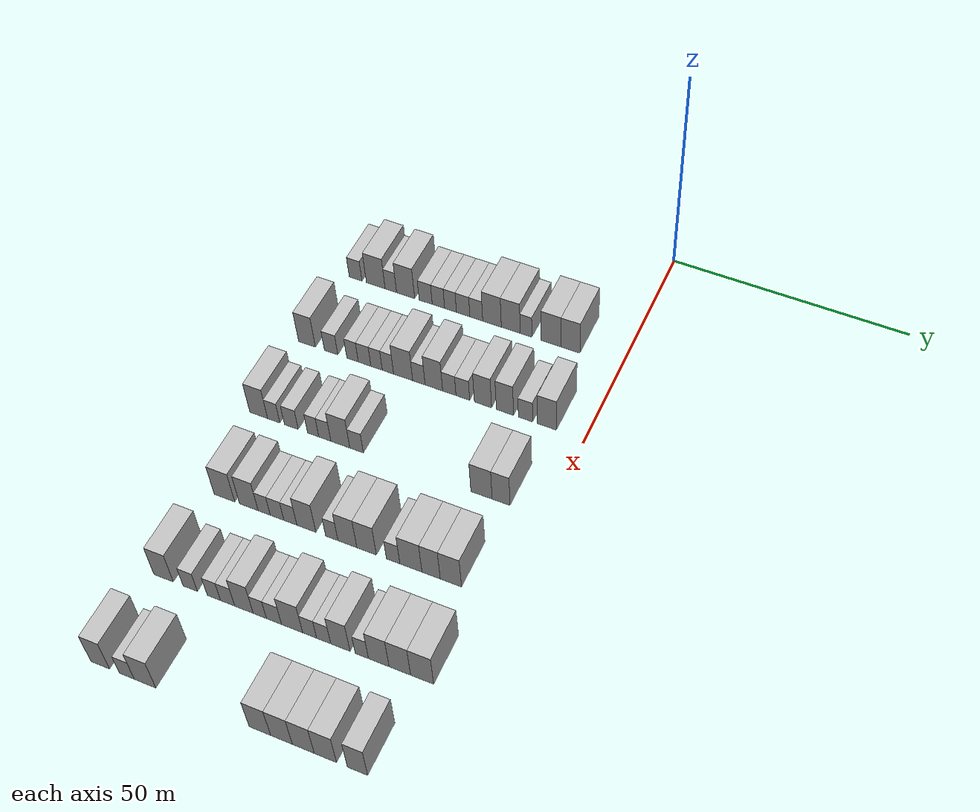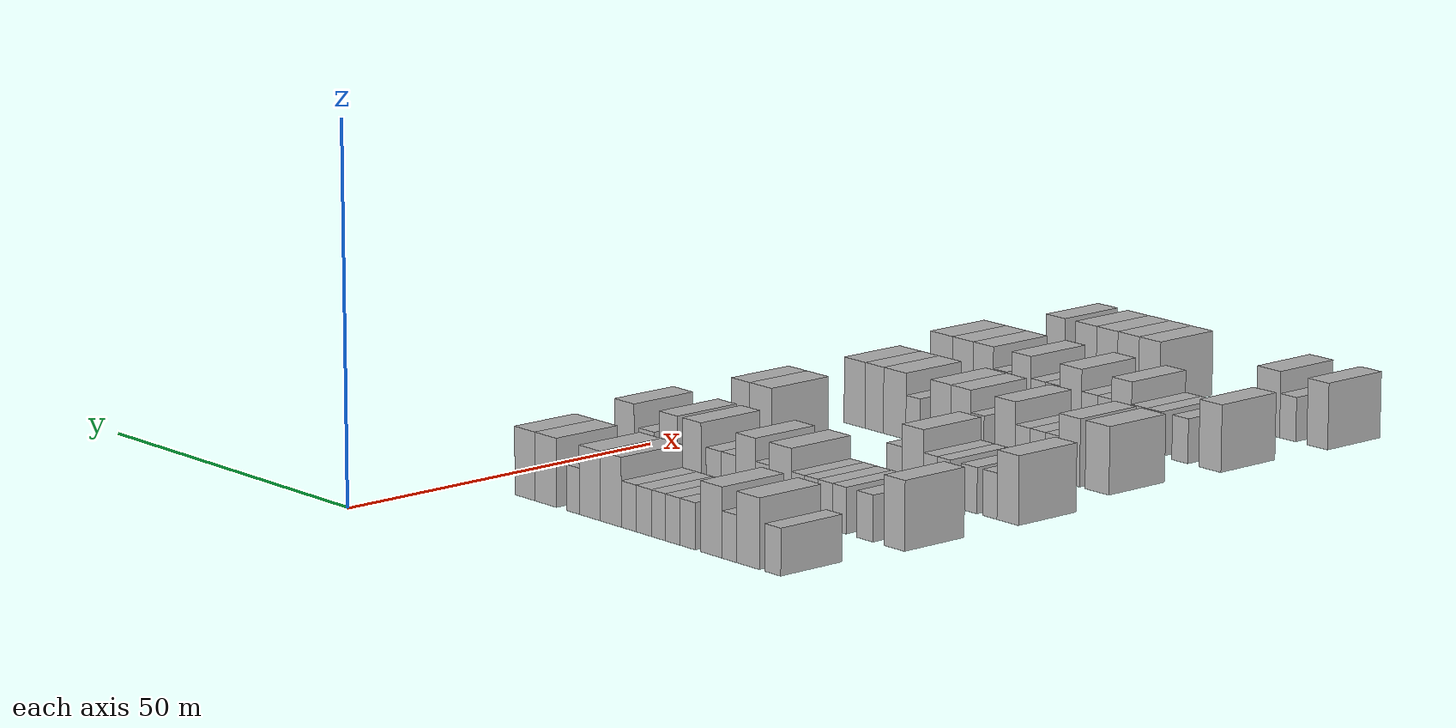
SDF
<sdf version="1.6">
 <world name="default">
  <model name="building_77">
   <static>1</static>
   <pose>25.0000 -58.4476 0 0.000000 0.000000 0.000000</pose>
   <link name="link">
    <pose>0 0 3.00 0 0 0</pose>
    <collision name="collision"><geometry><box><size>10.0000 2.9207 6.0000</size></box></geometry></collision>
    <visual name="visual">
     <cast_shadows>0</cast_shadows>
     <geometry><box><size>10.0000 2.9207 6.0000</size></box></geometry>
     <material>
      <script>
       <uri>model://HANNAS_wall/materials/scripts</uri>
       <uri>model://HANNAS_wall/materials/textures</uri>
       <name>vrc/HANNAS_wall</name>
      </script>
     </material>
    </visual>
   </link>
  </model>
  <model name="building_78">
   <static>1</static>
   <pose>25.0000 -53.8514 0 0.000000 0.000000 0.000000</pose>
   <link name="link">
    <pose>0 0 4.50 0 0 0</pose>
    <collision name="collision"><geometry><box><size>10.0000 4.2717 9.0000</size></box></geometry></collision>
    <visual name="visual">
     <cast_shadows>0</cast_shadows>
     <geometry><box><size>10.0000 4.2717 9.0000</size></box></geometry>
     <material>
      <script>
       <uri>model://HANNAS_wall/materials/scripts</uri>
       <uri>model://HANNAS_wall/materials/textures</uri>
       <name>vrc/HANNAS_wall</name>
      </script>
     </material>
    </visual>
   </link>
  </model>
  <model name="building_79">
   <static>1</static>
   <pose>25.0000 -50.4150 0 0.000000 0.000000 0.000000</pose>
   <link name="link">
    <pose>0 0 3.00 0 0 0</pose>
    <collision name="collision"><geometry><box><size>10.0000 2.6010 6.0000</size></box></geometry></collision>
    <visual name="visual">
     <cast_shadows>0</cast_shadows>
     <geometry><box><size>10.0000 2.6010 6.0000</size></box></geometry>
     <material>
      <script>
       <uri>model://HANNAS_wall/materials/scripts</uri>
       <uri>model://HANNAS_wall/materials/textures</uri>
       <name>vrc/HANNAS_wall</name>
      </script>
     </material>
    </visual>
   </link>
  </model>
  <model name="building_80">
   <static>1</static>
   <pose>25.0000 -47.0596 0 0.000000 0.000000 0.000000</pose>
   <link name="link">
    <pose>0 0 4.50 0 0 0</pose>
    <collision name="collision"><geometry><box><size>10.0000 4.1098 9.0000</size></box></geometry></collision>
    <visual name="visual">
     <cast_shadows>0</cast_shadows>
     <geometry><box><size>10.0000 4.1098 9.0000</size></box></geometry>
     <material>
      <script>
       <uri>model://HANNAS_wall/materials/scripts</uri>
       <uri>model://HANNAS_wall/materials/textures</uri>
       <name>vrc/HANNAS_wall</name>
      </script>
     </material>
    </visual>
   </link>
  </model>
  <model name="building_81">
   <static>1</static>
   <pose>25.0000 -42.5346 0 0.000000 0.000000 0.000000</pose>
   <link name="link">
    <pose>0 0 3.00 0 0 0</pose>
    <collision name="collision"><geometry><box><size>10.0000 2.9402 6.0000</size></box></geometry></collision>
    <visual name="visual">
     <cast_shadows>0</cast_shadows>
     <geometry><box><size>10.0000 2.9402 6.0000</size></box></geometry>
     <material>
      <script>
       <uri>model://HANNAS_wall/materials/scripts</uri>
       <uri>model://HANNAS_wall/materials/textures</uri>
       <name>vrc/HANNAS_wall</name>
      </script>
     </material>
    </visual>
   </link>
  </model>
  <model name="building_82">
   <static>1</static>
   <pose>25.0000 -39.6803 0 0.000000 0.000000 0.000000</pose>
   <link name="link">
    <pose>0 0 3.00 0 0 0</pose>
    <collision name="collision"><geometry><box><size>10.0000 2.7684 6.0000</size></box></geometry></collision>
    <visual name="visual">
     <cast_shadows>0</cast_shadows>
     <geometry><box><size>10.0000 2.7684 6.0000</size></box></geometry>
     <material>
      <script>
       <uri>model://HANNAS_wall/materials/scripts</uri>
       <uri>model://HANNAS_wall/materials/textures</uri>
       <name>vrc/HANNAS_wall</name>
      </script>
     </material>
    </visual>
   </link>
  </model>
  <model name="building_83">
   <static>1</static>
   <pose>25.0000 -36.9783 0 0.000000 0.000000 0.000000</pose>
   <link name="link">
    <pose>0 0 3.00 0 0 0</pose>
    <collision name="collision"><geometry><box><size>10.0000 2.6357 6.0000</size></box></geometry></collision>
    <visual name="visual">
     <cast_shadows>0</cast_shadows>
     <geometry><box><size>10.0000 2.6357 6.0000</size></box></geometry>
     <material>
      <script>
       <uri>model://HANNAS_wall/materials/scripts</uri>
       <uri>model://HANNAS_wall/materials/textures</uri>
       <name>vrc/HANNAS_wall</name>
      </script>
     </material>
    </visual>
   </link>
  </model>
  <model name="building_84">
   <static>1</static>
   <pose>25.0000 -34.1744 0 0.000000 0.000000 0.000000</pose>
   <link name="link">
    <pose>0 0 3.00 0 0 0</pose>
    <collision name="collision"><geometry><box><size>10.0000 2.9719 6.0000</size></box></geometry></collision>
    <visual name="visual">
     <cast_shadows>0</cast_shadows>
     <geometry><box><size>10.0000 2.9719 6.0000</size></box></geometry>
     <material>
      <script>
       <uri>model://HANNAS_wall/materials/scripts</uri>
       <uri>model://HANNAS_wall/materials/textures</uri>
       <name>vrc/HANNAS_wall</name>
      </script>
     </material>
    </visual>
   </link>
  </model>
  <model name="building_85">
   <static>1</static>
   <pose>25.0000 -31.2717 0 0.000000 0.000000 0.000000</pose>
   <link name="link">
    <pose>0 0 3.00 0 0 0</pose>
    <collision name="collision"><geometry><box><size>10.0000 2.8336 6.0000</size></box></geometry></collision>
    <visual name="visual">
     <cast_shadows>0</cast_shadows>
     <geometry><box><size>10.0000 2.8336 6.0000</size></box></geometry>
     <material>
      <script>
       <uri>model://HANNAS_wall/materials/scripts</uri>
       <uri>model://HANNAS_wall/materials/textures</uri>
       <name>vrc/HANNAS_wall</name>
      </script>
     </material>
    </visual>
   </link>
  </model>
  <model name="building_86">
   <static>1</static>
   <pose>25.0000 -27.8089 0 0.000000 0.000000 0.000000</pose>
   <link name="link">
    <pose>0 0 4.50 0 0 0</pose>
    <collision name="collision"><geometry><box><size>10.0000 4.0921 9.0000</size></box></geometry></collision>
    <visual name="visual">
     <cast_shadows>0</cast_shadows>
     <geometry><box><size>10.0000 4.0921 9.0000</size></box></geometry>
     <material>
      <script>
       <uri>model://HANNAS_wall/materials/scripts</uri>
       <uri>model://HANNAS_wall/materials/textures</uri>
       <name>vrc/HANNAS_wall</name>
      </script>
     </material>
    </visual>
   </link>
  </model>
  <model name="building_87">
   <static>1</static>
   <pose>25.0000 -23.6969 0 0.000000 0.000000 0.000000</pose>
   <link name="link">
    <pose>0 0 4.50 0 0 0</pose>
    <collision name="collision"><geometry><box><size>10.0000 4.1319 9.0000</size></box></geometry></collision>
    <visual name="visual">
     <cast_shadows>0</cast_shadows>
     <geometry><box><size>10.0000 4.1319 9.0000</size></box></geometry>
     <material>
      <script>
       <uri>model://HANNAS_wall/materials/scripts</uri>
       <uri>model://HANNAS_wall/materials/textures</uri>
       <name>vrc/HANNAS_wall</name>
      </script>
     </material>
    </visual>
   </link>
  </model>
  <model name="building_88">
   <static>1</static>
   <pose>25.0000 -20.3647 0 0.000000 0.000000 0.000000</pose>
   <link name="link">
    <pose>0 0 3.00 0 0 0</pose>
    <collision name="collision"><geometry><box><size>10.0000 2.5325 6.0000</size></box></geometry></collision>
    <visual name="visual">
     <cast_shadows>0</cast_shadows>
     <geometry><box><size>10.0000 2.5325 6.0000</size></box></geometry>
     <material>
      <script>
       <uri>model://HANNAS_wall/materials/scripts</uri>
       <uri>model://HANNAS_wall/materials/textures</uri>
       <name>vrc/HANNAS_wall</name>
      </script>
     </material>
    </visual>
   </link>
  </model>
  <model name="building_89">
   <static>1</static>
   <pose>25.0000 -14.9660 0 0.000000 0.000000 0.000000</pose>
   <link name="link">
    <pose>0 0 4.50 0 0 0</pose>
    <collision name="collision"><geometry><box><size>10.0000 4.2647 9.0000</size></box></geometry></collision>
    <visual name="visual">
     <cast_shadows>0</cast_shadows>
     <geometry><box><size>10.0000 4.2647 9.0000</size></box></geometry>
     <material>
      <script>
       <uri>model://HANNAS_wall/materials/scripts</uri>
       <uri>model://HANNAS_wall/materials/textures</uri>
       <name>vrc/HANNAS_wall</name>
      </script>
     </material>
    </visual>
   </link>
  </model>
  <model name="building_90">
   <static>1</static>
   <pose>25.0000 -10.7968 0 0.000000 0.000000 0.000000</pose>
   <link name="link">
    <pose>0 0 4.50 0 0 0</pose>
    <collision name="collision"><geometry><box><size>10.0000 4.0738 9.0000</size></box></geometry></collision>
    <visual name="visual">
     <cast_shadows>0</cast_shadows>
     <geometry><box><size>10.0000 4.0738 9.0000</size></box></geometry>
     <material>
      <script>
       <uri>model://HANNAS_wall/materials/scripts</uri>
       <uri>model://HANNAS_wall/materials/textures</uri>
       <name>vrc/HANNAS_wall</name>
      </script>
     </material>
    </visual>
   </link>
  </model>
  <model name="building_241">
   <static>1</static>
   <pose>44.0000 -59.4899 0 0.000000 0.000000 0.000000</pose>
   <link name="link">
    <pose>0 0 4.50 0 0 0</pose>
    <collision name="collision"><geometry><box><size>10.0000 3.7705 9.0000</size></box></geometry></collision>
    <visual name="visual">
     <cast_shadows>0</cast_shadows>
     <geometry><box><size>10.0000 3.7705 9.0000</size></box></geometry>
     <material>
      <script>
       <uri>model://HANNAS_wall/materials/scripts</uri>
       <uri>model://HANNAS_wall/materials/textures</uri>
       <name>vrc/HANNAS_wall</name>
      </script>
     </material>
    </visual>
   </link>
  </model>
  <model name="building_242">
   <static>1</static>
   <pose>44.0000 -54.1072 0 0.000000 0.000000 0.000000</pose>
   <link name="link">
    <pose>0 0 3.00 0 0 0</pose>
    <collision name="collision"><geometry><box><size>10.0000 2.9950 6.0000</size></box></geometry></collision>
    <visual name="visual">
     <cast_shadows>0</cast_shadows>
     <geometry><box><size>10.0000 2.9950 6.0000</size></box></geometry>
     <material>
      <script>
       <uri>model://HANNAS_wall/materials/scripts</uri>
       <uri>model://HANNAS_wall/materials/textures</uri>
       <name>vrc/HANNAS_wall</name>
      </script>
     </material>
    </visual>
   </link>
  </model>
  <model name="building_243">
   <static>1</static>
   <pose>44.0000 -49.3442 0 0.000000 0.000000 0.000000</pose>
   <link name="link">
    <pose>0 0 3.00 0 0 0</pose>
    <collision name="collision"><geometry><box><size>10.0000 2.5311 6.0000</size></box></geometry></collision>
    <visual name="visual">
     <cast_shadows>0</cast_shadows>
     <geometry><box><size>10.0000 2.5311 6.0000</size></box></geometry>
     <material>
      <script>
       <uri>model://HANNAS_wall/materials/scripts</uri>
       <uri>model://HANNAS_wall/materials/textures</uri>
       <name>vrc/HANNAS_wall</name>
      </script>
     </material>
    </visual>
   </link>
  </model>
  <model name="building_244">
   <static>1</static>
   <pose>44.0000 -46.6937 0 0.000000 0.000000 0.000000</pose>
   <link name="link">
    <pose>0 0 3.00 0 0 0</pose>
    <collision name="collision"><geometry><box><size>10.0000 2.7700 6.0000</size></box></geometry></collision>
    <visual name="visual">
     <cast_shadows>0</cast_shadows>
     <geometry><box><size>10.0000 2.7700 6.0000</size></box></geometry>
     <material>
      <script>
       <uri>model://HANNAS_wall/materials/scripts</uri>
       <uri>model://HANNAS_wall/materials/textures</uri>
       <name>vrc/HANNAS_wall</name>
      </script>
     </material>
    </visual>
   </link>
  </model>
  <model name="building_245">
   <static>1</static>
   <pose>44.0000 -44.0615 0 0.000000 0.000000 0.000000</pose>
   <link name="link">
    <pose>0 0 3.00 0 0 0</pose>
    <collision name="collision"><geometry><box><size>10.0000 2.4944 6.0000</size></box></geometry></collision>
    <visual name="visual">
     <cast_shadows>0</cast_shadows>
     <geometry><box><size>10.0000 2.4944 6.0000</size></box></geometry>
     <material>
      <script>
       <uri>model://HANNAS_wall/materials/scripts</uri>
       <uri>model://HANNAS_wall/materials/textures</uri>
       <name>vrc/HANNAS_wall</name>
      </script>
     </material>
    </visual>
   </link>
  </model>
  <model name="building_246">
   <static>1</static>
   <pose>44.0000 -41.5776 0 0.000000 0.000000 0.000000</pose>
   <link name="link">
    <pose>0 0 3.00 0 0 0</pose>
    <collision name="collision"><geometry><box><size>10.0000 2.4734 6.0000</size></box></geometry></collision>
    <visual name="visual">
     <cast_shadows>0</cast_shadows>
     <geometry><box><size>10.0000 2.4734 6.0000</size></box></geometry>
     <material>
      <script>
       <uri>model://HANNAS_wall/materials/scripts</uri>
       <uri>model://HANNAS_wall/materials/textures</uri>
       <name>vrc/HANNAS_wall</name>
      </script>
     </material>
    </visual>
   </link>
  </model>
  <model name="building_247">
   <static>1</static>
   <pose>44.0000 -38.2686 0 0.000000 0.000000 0.000000</pose>
   <link name="link">
    <pose>0 0 4.50 0 0 0</pose>
    <collision name="collision"><geometry><box><size>10.0000 4.1448 9.0000</size></box></geometry></collision>
    <visual name="visual">
     <cast_shadows>0</cast_shadows>
     <geometry><box><size>10.0000 4.1448 9.0000</size></box></geometry>
     <material>
      <script>
       <uri>model://HANNAS_wall/materials/scripts</uri>
       <uri>model://HANNAS_wall/materials/textures</uri>
       <name>vrc/HANNAS_wall</name>
      </script>
     </material>
    </visual>
   </link>
  </model>
  <model name="building_248">
   <static>1</static>
   <pose>44.0000 -34.8523 0 0.000000 0.000000 0.000000</pose>
   <link name="link">
    <pose>0 0 3.00 0 0 0</pose>
    <collision name="collision"><geometry><box><size>10.0000 2.6878 6.0000</size></box></geometry></collision>
    <visual name="visual">
     <cast_shadows>0</cast_shadows>
     <geometry><box><size>10.0000 2.6878 6.0000</size></box></geometry>
     <material>
      <script>
       <uri>model://HANNAS_wall/materials/scripts</uri>
       <uri>model://HANNAS_wall/materials/textures</uri>
       <name>vrc/HANNAS_wall</name>
      </script>
     </material>
    </visual>
   </link>
  </model>
  <model name="building_249">
   <static>1</static>
   <pose>44.0000 -31.6255 0 0.000000 0.000000 0.000000</pose>
   <link name="link">
    <pose>0 0 4.50 0 0 0</pose>
    <collision name="collision"><geometry><box><size>10.0000 3.7657 9.0000</size></box></geometry></collision>
    <visual name="visual">
     <cast_shadows>0</cast_shadows>
     <geometry><box><size>10.0000 3.7657 9.0000</size></box></geometry>
     <material>
      <script>
       <uri>model://HANNAS_wall/materials/scripts</uri>
       <uri>model://HANNAS_wall/materials/textures</uri>
       <name>vrc/HANNAS_wall</name>
      </script>
     </material>
    </visual>
   </link>
  </model>
  <model name="building_250">
   <static>1</static>
   <pose>44.0000 -28.3138 0 0.000000 0.000000 0.000000</pose>
   <link name="link">
    <pose>0 0 3.00 0 0 0</pose>
    <collision name="collision"><geometry><box><size>10.0000 2.8578 6.0000</size></box></geometry></collision>
    <visual name="visual">
     <cast_shadows>0</cast_shadows>
     <geometry><box><size>10.0000 2.8578 6.0000</size></box></geometry>
     <material>
      <script>
       <uri>model://HANNAS_wall/materials/scripts</uri>
       <uri>model://HANNAS_wall/materials/textures</uri>
       <name>vrc/HANNAS_wall</name>
      </script>
     </material>
    </visual>
   </link>
  </model>
  <model name="building_251">
   <static>1</static>
   <pose>44.0000 -25.4274 0 0.000000 0.000000 0.000000</pose>
   <link name="link">
    <pose>0 0 3.00 0 0 0</pose>
    <collision name="collision"><geometry><box><size>10.0000 2.9149 6.0000</size></box></geometry></collision>
    <visual name="visual">
     <cast_shadows>0</cast_shadows>
     <geometry><box><size>10.0000 2.9149 6.0000</size></box></geometry>
     <material>
      <script>
       <uri>model://HANNAS_wall/materials/scripts</uri>
       <uri>model://HANNAS_wall/materials/textures</uri>
       <name>vrc/HANNAS_wall</name>
      </script>
     </material>
    </visual>
   </link>
  </model>
  <model name="building_252">
   <static>1</static>
   <pose>44.0000 -21.1510 0 0.000000 0.000000 0.000000</pose>
   <link name="link">
    <pose>0 0 4.50 0 0 0</pose>
    <collision name="collision"><geometry><box><size>10.0000 3.6380 9.0000</size></box></geometry></collision>
    <visual name="visual">
     <cast_shadows>0</cast_shadows>
     <geometry><box><size>10.0000 3.6380 9.0000</size></box></geometry>
     <material>
      <script>
       <uri>model://HANNAS_wall/materials/scripts</uri>
       <uri>model://HANNAS_wall/materials/textures</uri>
       <name>vrc/HANNAS_wall</name>
      </script>
     </material>
    </visual>
   </link>
  </model>
  <model name="building_253">
   <static>1</static>
   <pose>44.0000 -16.5174 0 0.000000 0.000000 0.000000</pose>
   <link name="link">
    <pose>0 0 4.50 0 0 0</pose>
    <collision name="collision"><geometry><box><size>10.0000 3.6291 9.0000</size></box></geometry></collision>
    <visual name="visual">
     <cast_shadows>0</cast_shadows>
     <geometry><box><size>10.0000 3.6291 9.0000</size></box></geometry>
     <material>
      <script>
       <uri>model://HANNAS_wall/materials/scripts</uri>
       <uri>model://HANNAS_wall/materials/textures</uri>
       <name>vrc/HANNAS_wall</name>
      </script>
     </material>
    </visual>
   </link>
  </model>
  <model name="building_254">
   <static>1</static>
   <pose>44.0000 -12.2108 0 0.000000 0.000000 0.000000</pose>
   <link name="link">
    <pose>0 0 3.00 0 0 0</pose>
    <collision name="collision"><geometry><box><size>10.0000 2.9842 6.0000</size></box></geometry></collision>
    <visual name="visual">
     <cast_shadows>0</cast_shadows>
     <geometry><box><size>10.0000 2.9842 6.0000</size></box></geometry>
     <material>
      <script>
       <uri>model://HANNAS_wall/materials/scripts</uri>
       <uri>model://HANNAS_wall/materials/textures</uri>
       <name>vrc/HANNAS_wall</name>
      </script>
     </material>
    </visual>
   </link>
  </model>
  <model name="building_255">
   <static>1</static>
   <pose>44.0000 -7.7465 0 0.000000 0.000000 0.000000</pose>
   <link name="link">
    <pose>0 0 4.50 0 0 0</pose>
    <collision name="collision"><geometry><box><size>10.0000 3.9444 9.0000</size></box></geometry></collision>
    <visual name="visual">
     <cast_shadows>0</cast_shadows>
     <geometry><box><size>10.0000 3.9444 9.0000</size></box></geometry>
     <material>
      <script>
       <uri>model://HANNAS_wall/materials/scripts</uri>
       <uri>model://HANNAS_wall/materials/textures</uri>
       <name>vrc/HANNAS_wall</name>
      </script>
     </material>
    </visual>
   </link>
  </model>
  <model name="building_417">
   <static>1</static>
   <pose>63.0000 -59.7227 0 0.000000 0.000000 0.000000</pose>
   <link name="link">
    <pose>0 0 4.50 0 0 0</pose>
    <collision name="collision"><geometry><box><size>10.0000 3.9034 9.0000</size></box></geometry></collision>
    <visual name="visual">
     <cast_shadows>0</cast_shadows>
     <geometry><box><size>10.0000 3.9034 9.0000</size></box></geometry>
     <material>
      <script>
       <uri>model://HANNAS_wall/materials/scripts</uri>
       <uri>model://HANNAS_wall/materials/textures</uri>
       <name>vrc/HANNAS_wall</name>
      </script>
     </material>
    </visual>
   </link>
  </model>
  <model name="building_418">
   <static>1</static>
   <pose>63.0000 -56.4423 0 0.000000 0.000000 0.000000</pose>
   <link name="link">
    <pose>0 0 3.00 0 0 0</pose>
    <collision name="collision"><geometry><box><size>10.0000 2.6574 6.0000</size></box></geometry></collision>
    <visual name="visual">
     <cast_shadows>0</cast_shadows>
     <geometry><box><size>10.0000 2.6574 6.0000</size></box></geometry>
     <material>
      <script>
       <uri>model://HANNAS_wall/materials/scripts</uri>
       <uri>model://HANNAS_wall/materials/textures</uri>
       <name>vrc/HANNAS_wall</name>
      </script>
     </material>
    </visual>
   </link>
  </model>
  <model name="building_419">
   <static>1</static>
   <pose>63.0000 -52.6202 0 0.000000 0.000000 0.000000</pose>
   <link name="link">
    <pose>0 0 3.00 0 0 0</pose>
    <collision name="collision"><geometry><box><size>10.0000 2.9867 6.0000</size></box></geometry></collision>
    <visual name="visual">
     <cast_shadows>0</cast_shadows>
     <geometry><box><size>10.0000 2.9867 6.0000</size></box></geometry>
     <material>
      <script>
       <uri>model://HANNAS_wall/materials/scripts</uri>
       <uri>model://HANNAS_wall/materials/textures</uri>
       <name>vrc/HANNAS_wall</name>
      </script>
     </material>
    </visual>
   </link>
  </model>
  <model name="building_420">
   <static>1</static>
   <pose>63.0000 -47.9261 0 0.000000 0.000000 0.000000</pose>
   <link name="link">
    <pose>0 0 3.00 0 0 0</pose>
    <collision name="collision"><geometry><box><size>10.0000 2.4014 6.0000</size></box></geometry></collision>
    <visual name="visual">
     <cast_shadows>0</cast_shadows>
     <geometry><box><size>10.0000 2.4014 6.0000</size></box></geometry>
     <material>
      <script>
       <uri>model://HANNAS_wall/materials/scripts</uri>
       <uri>model://HANNAS_wall/materials/textures</uri>
       <name>vrc/HANNAS_wall</name>
      </script>
     </material>
    </visual>
   </link>
  </model>
  <model name="building_421">
   <static>1</static>
   <pose>63.0000 -45.4316 0 0.000000 0.000000 0.000000</pose>
   <link name="link">
    <pose>0 0 3.00 0 0 0</pose>
    <collision name="collision"><geometry><box><size>10.0000 2.5877 6.0000</size></box></geometry></collision>
    <visual name="visual">
     <cast_shadows>0</cast_shadows>
     <geometry><box><size>10.0000 2.5877 6.0000</size></box></geometry>
     <material>
      <script>
       <uri>model://HANNAS_wall/materials/scripts</uri>
       <uri>model://HANNAS_wall/materials/textures</uri>
       <name>vrc/HANNAS_wall</name>
      </script>
     </material>
    </visual>
   </link>
  </model>
  <model name="building_422">
   <static>1</static>
   <pose>63.0000 -42.1269 0 0.000000 0.000000 0.000000</pose>
   <link name="link">
    <pose>0 0 4.50 0 0 0</pose>
    <collision name="collision"><geometry><box><size>10.0000 4.0216 9.0000</size></box></geometry></collision>
    <visual name="visual">
     <cast_shadows>0</cast_shadows>
     <geometry><box><size>10.0000 4.0216 9.0000</size></box></geometry>
     <material>
      <script>
       <uri>model://HANNAS_wall/materials/scripts</uri>
       <uri>model://HANNAS_wall/materials/textures</uri>
       <name>vrc/HANNAS_wall</name>
      </script>
     </material>
    </visual>
   </link>
  </model>
  <model name="building_423">
   <static>1</static>
   <pose>63.0000 -38.6837 0 0.000000 0.000000 0.000000</pose>
   <link name="link">
    <pose>0 0 3.00 0 0 0</pose>
    <collision name="collision"><geometry><box><size>10.0000 2.8649 6.0000</size></box></geometry></collision>
    <visual name="visual">
     <cast_shadows>0</cast_shadows>
     <geometry><box><size>10.0000 2.8649 6.0000</size></box></geometry>
     <material>
      <script>
       <uri>model://HANNAS_wall/materials/scripts</uri>
       <uri>model://HANNAS_wall/materials/textures</uri>
       <name>vrc/HANNAS_wall</name>
      </script>
     </material>
    </visual>
   </link>
  </model>
  <model name="building_424">
   <static>1</static>
   <pose>63.0000 -12.8054 0 0.000000 0.000000 0.000000</pose>
   <link name="link">
    <pose>0 0 4.50 0 0 0</pose>
    <collision name="collision"><geometry><box><size>10.0000 4.2972 9.0000</size></box></geometry></collision>
    <visual name="visual">
     <cast_shadows>0</cast_shadows>
     <geometry><box><size>10.0000 4.2972 9.0000</size></box></geometry>
     <material>
      <script>
       <uri>model://HANNAS_wall/materials/scripts</uri>
       <uri>model://HANNAS_wall/materials/textures</uri>
       <name>vrc/HANNAS_wall</name>
      </script>
     </material>
    </visual>
   </link>
  </model>
  <model name="building_425">
   <static>1</static>
   <pose>63.0000 -8.8490 0 0.000000 0.000000 0.000000</pose>
   <link name="link">
    <pose>0 0 4.50 0 0 0</pose>
    <collision name="collision"><geometry><box><size>10.0000 3.6155 9.0000</size></box></geometry></collision>
    <visual name="visual">
     <cast_shadows>0</cast_shadows>
     <geometry><box><size>10.0000 3.6155 9.0000</size></box></geometry>
     <material>
      <script>
       <uri>model://HANNAS_wall/materials/scripts</uri>
       <uri>model://HANNAS_wall/materials/textures</uri>
       <name>vrc/HANNAS_wall</name>
      </script>
     </material>
    </visual>
   </link>
  </model>
  <model name="building_594">
   <static>1</static>
   <pose>82.0000 -56.2415 0 0.000000 0.000000 0.000000</pose>
   <link name="link">
    <pose>0 0 4.50 0 0 0</pose>
    <collision name="collision"><geometry><box><size>10.0000 4.3466 9.0000</size></box></geometry></collision>
    <visual name="visual">
     <cast_shadows>0</cast_shadows>
     <geometry><box><size>10.0000 4.3466 9.0000</size></box></geometry>
     <material>
      <script>
       <uri>model://HANNAS_wall/materials/scripts</uri>
       <uri>model://HANNAS_wall/materials/textures</uri>
       <name>vrc/HANNAS_wall</name>
      </script>
     </material>
    </visual>
   </link>
  </model>
  <model name="building_595">
   <static>1</static>
   <pose>82.0000 -51.1141 0 0.000000 0.000000 0.000000</pose>
   <link name="link">
    <pose>0 0 4.50 0 0 0</pose>
    <collision name="collision"><geometry><box><size>10.0000 3.9081 9.0000</size></box></geometry></collision>
    <visual name="visual">
     <cast_shadows>0</cast_shadows>
     <geometry><box><size>10.0000 3.9081 9.0000</size></box></geometry>
     <material>
      <script>
       <uri>model://HANNAS_wall/materials/scripts</uri>
       <uri>model://HANNAS_wall/materials/textures</uri>
       <name>vrc/HANNAS_wall</name>
      </script>
     </material>
    </visual>
   </link>
  </model>
  <model name="building_596">
   <static>1</static>
   <pose>82.0000 -47.8943 0 0.000000 0.000000 0.000000</pose>
   <link name="link">
    <pose>0 0 3.00 0 0 0</pose>
    <collision name="collision"><geometry><box><size>10.0000 2.5316 6.0000</size></box></geometry></collision>
    <visual name="visual">
     <cast_shadows>0</cast_shadows>
     <geometry><box><size>10.0000 2.5316 6.0000</size></box></geometry>
     <material>
      <script>
       <uri>model://HANNAS_wall/materials/scripts</uri>
       <uri>model://HANNAS_wall/materials/textures</uri>
       <name>vrc/HANNAS_wall</name>
      </script>
     </material>
    </visual>
   </link>
  </model>
  <model name="building_597">
   <static>1</static>
   <pose>82.0000 -45.2102 0 0.000000 0.000000 0.000000</pose>
   <link name="link">
    <pose>0 0 3.00 0 0 0</pose>
    <collision name="collision"><geometry><box><size>10.0000 2.8368 6.0000</size></box></geometry></collision>
    <visual name="visual">
     <cast_shadows>0</cast_shadows>
     <geometry><box><size>10.0000 2.8368 6.0000</size></box></geometry>
     <material>
      <script>
       <uri>model://HANNAS_wall/materials/scripts</uri>
       <uri>model://HANNAS_wall/materials/textures</uri>
       <name>vrc/HANNAS_wall</name>
      </script>
     </material>
    </visual>
   </link>
  </model>
  <model name="building_598">
   <static>1</static>
   <pose>82.0000 -42.4422 0 0.000000 0.000000 0.000000</pose>
   <link name="link">
    <pose>0 0 3.00 0 0 0</pose>
    <collision name="collision"><geometry><box><size>10.0000 2.6991 6.0000</size></box></geometry></collision>
    <visual name="visual">
     <cast_shadows>0</cast_shadows>
     <geometry><box><size>10.0000 2.6991 6.0000</size></box></geometry>
     <material>
      <script>
       <uri>model://HANNAS_wall/materials/scripts</uri>
       <uri>model://HANNAS_wall/materials/textures</uri>
       <name>vrc/HANNAS_wall</name>
      </script>
     </material>
    </visual>
   </link>
  </model>
  <model name="building_599">
   <static>1</static>
   <pose>82.0000 -39.1421 0 0.000000 0.000000 0.000000</pose>
   <link name="link">
    <pose>0 0 4.50 0 0 0</pose>
    <collision name="collision"><geometry><box><size>10.0000 3.9010 9.0000</size></box></geometry></collision>
    <visual name="visual">
     <cast_shadows>0</cast_shadows>
     <geometry><box><size>10.0000 3.9010 9.0000</size></box></geometry>
     <material>
      <script>
       <uri>model://HANNAS_wall/materials/scripts</uri>
       <uri>model://HANNAS_wall/materials/textures</uri>
       <name>vrc/HANNAS_wall</name>
      </script>
     </material>
    </visual>
   </link>
  </model>
  <model name="building_600">
   <static>1</static>
   <pose>82.0000 -33.9376 0 0.000000 0.000000 0.000000</pose>
   <link name="link">
    <pose>0 0 3.00 0 0 0</pose>
    <collision name="collision"><geometry><box><size>10.0000 2.5082 6.0000</size></box></geometry></collision>
    <visual name="visual">
     <cast_shadows>0</cast_shadows>
     <geometry><box><size>10.0000 2.5082 6.0000</size></box></geometry>
     <material>
      <script>
       <uri>model://HANNAS_wall/materials/scripts</uri>
       <uri>model://HANNAS_wall/materials/textures</uri>
       <name>vrc/HANNAS_wall</name>
      </script>
     </material>
    </visual>
   </link>
  </model>
  <model name="building_601">
   <static>1</static>
   <pose>82.0000 -30.7688 0 0.000000 0.000000 0.000000</pose>
   <link name="link">
    <pose>0 0 4.50 0 0 0</pose>
    <collision name="collision"><geometry><box><size>10.0000 3.8293 9.0000</size></box></geometry></collision>
    <visual name="visual">
     <cast_shadows>0</cast_shadows>
     <geometry><box><size>10.0000 3.8293 9.0000</size></box></geometry>
     <material>
      <script>
       <uri>model://HANNAS_wall/materials/scripts</uri>
       <uri>model://HANNAS_wall/materials/textures</uri>
       <name>vrc/HANNAS_wall</name>
      </script>
     </material>
    </visual>
   </link>
  </model>
  <model name="building_602">
   <static>1</static>
   <pose>82.0000 -26.8819 0 0.000000 0.000000 0.000000</pose>
   <link name="link">
    <pose>0 0 4.50 0 0 0</pose>
    <collision name="collision"><geometry><box><size>10.0000 3.9446 9.0000</size></box></geometry></collision>
    <visual name="visual">
     <cast_shadows>0</cast_shadows>
     <geometry><box><size>10.0000 3.9446 9.0000</size></box></geometry>
     <material>
      <script>
       <uri>model://HANNAS_wall/materials/scripts</uri>
       <uri>model://HANNAS_wall/materials/textures</uri>
       <name>vrc/HANNAS_wall</name>
      </script>
     </material>
    </visual>
   </link>
  </model>
  <model name="building_603">
   <static>1</static>
   <pose>82.0000 -21.5606 0 0.000000 0.000000 0.000000</pose>
   <link name="link">
    <pose>0 0 3.00 0 0 0</pose>
    <collision name="collision"><geometry><box><size>10.0000 2.6979 6.0000</size></box></geometry></collision>
    <visual name="visual">
     <cast_shadows>0</cast_shadows>
     <geometry><box><size>10.0000 2.6979 6.0000</size></box></geometry>
     <material>
      <script>
       <uri>model://HANNAS_wall/materials/scripts</uri>
       <uri>model://HANNAS_wall/materials/textures</uri>
       <name>vrc/HANNAS_wall</name>
      </script>
     </material>
    </visual>
   </link>
  </model>
  <model name="building_604">
   <static>1</static>
   <pose>82.0000 -18.0181 0 0.000000 0.000000 0.000000</pose>
   <link name="link">
    <pose>0 0 4.50 0 0 0</pose>
    <collision name="collision"><geometry><box><size>10.0000 4.3872 9.0000</size></box></geometry></collision>
    <visual name="visual">
     <cast_shadows>0</cast_shadows>
     <geometry><box><size>10.0000 4.3872 9.0000</size></box></geometry>
     <material>
      <script>
       <uri>model://HANNAS_wall/materials/scripts</uri>
       <uri>model://HANNAS_wall/materials/textures</uri>
       <name>vrc/HANNAS_wall</name>
      </script>
     </material>
    </visual>
   </link>
  </model>
  <model name="building_605">
   <static>1</static>
   <pose>82.0000 -14.0205 0 0.000000 0.000000 0.000000</pose>
   <link name="link">
    <pose>0 0 4.50 0 0 0</pose>
    <collision name="collision"><geometry><box><size>10.0000 3.6080 9.0000</size></box></geometry></collision>
    <visual name="visual">
     <cast_shadows>0</cast_shadows>
     <geometry><box><size>10.0000 3.6080 9.0000</size></box></geometry>
     <material>
      <script>
       <uri>model://HANNAS_wall/materials/scripts</uri>
       <uri>model://HANNAS_wall/materials/textures</uri>
       <name>vrc/HANNAS_wall</name>
      </script>
     </material>
    </visual>
   </link>
  </model>
  <model name="building_606">
   <static>1</static>
   <pose>82.0000 -10.1283 0 0.000000 0.000000 0.000000</pose>
   <link name="link">
    <pose>0 0 4.50 0 0 0</pose>
    <collision name="collision"><geometry><box><size>10.0000 4.1764 9.0000</size></box></geometry></collision>
    <visual name="visual">
     <cast_shadows>0</cast_shadows>
     <geometry><box><size>10.0000 4.1764 9.0000</size></box></geometry>
     <material>
      <script>
       <uri>model://HANNAS_wall/materials/scripts</uri>
       <uri>model://HANNAS_wall/materials/textures</uri>
       <name>vrc/HANNAS_wall</name>
      </script>
     </material>
    </visual>
   </link>
  </model>
  <model name="building_763">
   <static>1</static>
   <pose>101.0000 -57.6533 0 0.000000 0.000000 0.000000</pose>
   <link name="link">
    <pose>0 0 4.50 0 0 0</pose>
    <collision name="collision"><geometry><box><size>10.0000 4.0067 9.0000</size></box></geometry></collision>
    <visual name="visual">
     <cast_shadows>0</cast_shadows>
     <geometry><box><size>10.0000 4.0067 9.0000</size></box></geometry>
     <material>
      <script>
       <uri>model://HANNAS_wall/materials/scripts</uri>
       <uri>model://HANNAS_wall/materials/textures</uri>
       <name>vrc/HANNAS_wall</name>
      </script>
     </material>
    </visual>
   </link>
  </model>
  <model name="building_764">
   <static>1</static>
   <pose>101.0000 -52.1833 0 0.000000 0.000000 0.000000</pose>
   <link name="link">
    <pose>0 0 3.00 0 0 0</pose>
    <collision name="collision"><geometry><box><size>10.0000 2.9333 6.0000</size></box></geometry></collision>
    <visual name="visual">
     <cast_shadows>0</cast_shadows>
     <geometry><box><size>10.0000 2.9333 6.0000</size></box></geometry>
     <material>
      <script>
       <uri>model://HANNAS_wall/materials/scripts</uri>
       <uri>model://HANNAS_wall/materials/textures</uri>
       <name>vrc/HANNAS_wall</name>
      </script>
     </material>
    </visual>
   </link>
  </model>
  <model name="building_765">
   <static>1</static>
   <pose>101.0000 -47.3697 0 0.000000 0.000000 0.000000</pose>
   <link name="link">
    <pose>0 0 3.00 0 0 0</pose>
    <collision name="collision"><geometry><box><size>10.0000 2.6938 6.0000</size></box></geometry></collision>
    <visual name="visual">
     <cast_shadows>0</cast_shadows>
     <geometry><box><size>10.0000 2.6938 6.0000</size></box></geometry>
     <material>
      <script>
       <uri>model://HANNAS_wall/materials/scripts</uri>
       <uri>model://HANNAS_wall/materials/textures</uri>
       <name>vrc/HANNAS_wall</name>
      </script>
     </material>
    </visual>
   </link>
  </model>
  <model name="building_766">
   <static>1</static>
   <pose>101.0000 -44.5956 0 0.000000 0.000000 0.000000</pose>
   <link name="link">
    <pose>0 0 3.00 0 0 0</pose>
    <collision name="collision"><geometry><box><size>10.0000 2.8545 6.0000</size></box></geometry></collision>
    <visual name="visual">
     <cast_shadows>0</cast_shadows>
     <geometry><box><size>10.0000 2.8545 6.0000</size></box></geometry>
     <material>
      <script>
       <uri>model://HANNAS_wall/materials/scripts</uri>
       <uri>model://HANNAS_wall/materials/textures</uri>
       <name>vrc/HANNAS_wall</name>
      </script>
     </material>
    </visual>
   </link>
  </model>
  <model name="building_767">
   <static>1</static>
   <pose>101.0000 -41.3081 0 0.000000 0.000000 0.000000</pose>
   <link name="link">
    <pose>0 0 4.50 0 0 0</pose>
    <collision name="collision"><geometry><box><size>10.0000 3.7204 9.0000</size></box></geometry></collision>
    <visual name="visual">
     <cast_shadows>0</cast_shadows>
     <geometry><box><size>10.0000 3.7204 9.0000</size></box></geometry>
     <material>
      <script>
       <uri>model://HANNAS_wall/materials/scripts</uri>
       <uri>model://HANNAS_wall/materials/textures</uri>
       <name>vrc/HANNAS_wall</name>
      </script>
     </material>
    </visual>
   </link>
  </model>
  <model name="building_768">
   <static>1</static>
   <pose>101.0000 -38.1227 0 0.000000 0.000000 0.000000</pose>
   <link name="link">
    <pose>0 0 3.00 0 0 0</pose>
    <collision name="collision"><geometry><box><size>10.0000 2.6505 6.0000</size></box></geometry></collision>
    <visual name="visual">
     <cast_shadows>0</cast_shadows>
     <geometry><box><size>10.0000 2.6505 6.0000</size></box></geometry>
     <material>
      <script>
       <uri>model://HANNAS_wall/materials/scripts</uri>
       <uri>model://HANNAS_wall/materials/textures</uri>
       <name>vrc/HANNAS_wall</name>
      </script>
     </material>
    </visual>
   </link>
  </model>
  <model name="building_769">
   <static>1</static>
   <pose>101.0000 -35.3033 0 0.000000 0.000000 0.000000</pose>
   <link name="link">
    <pose>0 0 3.00 0 0 0</pose>
    <collision name="collision"><geometry><box><size>10.0000 2.9884 6.0000</size></box></geometry></collision>
    <visual name="visual">
     <cast_shadows>0</cast_shadows>
     <geometry><box><size>10.0000 2.9884 6.0000</size></box></geometry>
     <material>
      <script>
       <uri>model://HANNAS_wall/materials/scripts</uri>
       <uri>model://HANNAS_wall/materials/textures</uri>
       <name>vrc/HANNAS_wall</name>
      </script>
     </material>
    </visual>
   </link>
  </model>
  <model name="building_770">
   <static>1</static>
   <pose>101.0000 -31.7212 0 0.000000 0.000000 0.000000</pose>
   <link name="link">
    <pose>0 0 4.50 0 0 0</pose>
    <collision name="collision"><geometry><box><size>10.0000 4.1759 9.0000</size></box></geometry></collision>
    <visual name="visual">
     <cast_shadows>0</cast_shadows>
     <geometry><box><size>10.0000 4.1759 9.0000</size></box></geometry>
     <material>
      <script>
       <uri>model://HANNAS_wall/materials/scripts</uri>
       <uri>model://HANNAS_wall/materials/textures</uri>
       <name>vrc/HANNAS_wall</name>
      </script>
     </material>
    </visual>
   </link>
  </model>
  <model name="building_771">
   <static>1</static>
   <pose>101.0000 -28.2634 0 0.000000 0.000000 0.000000</pose>
   <link name="link">
    <pose>0 0 3.00 0 0 0</pose>
    <collision name="collision"><geometry><box><size>10.0000 2.7397 6.0000</size></box></geometry></collision>
    <visual name="visual">
     <cast_shadows>0</cast_shadows>
     <geometry><box><size>10.0000 2.7397 6.0000</size></box></geometry>
     <material>
      <script>
       <uri>model://HANNAS_wall/materials/scripts</uri>
       <uri>model://HANNAS_wall/materials/textures</uri>
       <name>vrc/HANNAS_wall</name>
      </script>
     </material>
    </visual>
   </link>
  </model>
  <model name="building_772">
   <static>1</static>
   <pose>101.0000 -25.5178 0 0.000000 0.000000 0.000000</pose>
   <link name="link">
    <pose>0 0 3.00 0 0 0</pose>
    <collision name="collision"><geometry><box><size>10.0000 2.7514 6.0000</size></box></geometry></collision>
    <visual name="visual">
     <cast_shadows>0</cast_shadows>
     <geometry><box><size>10.0000 2.7514 6.0000</size></box></geometry>
     <material>
      <script>
       <uri>model://HANNAS_wall/materials/scripts</uri>
       <uri>model://HANNAS_wall/materials/textures</uri>
       <name>vrc/HANNAS_wall</name>
      </script>
     </material>
    </visual>
   </link>
  </model>
  <model name="building_773">
   <static>1</static>
   <pose>101.0000 -22.2685 0 0.000000 0.000000 0.000000</pose>
   <link name="link">
    <pose>0 0 4.50 0 0 0</pose>
    <collision name="collision"><geometry><box><size>10.0000 3.7473 9.0000</size></box></geometry></collision>
    <visual name="visual">
     <cast_shadows>0</cast_shadows>
     <geometry><box><size>10.0000 3.7473 9.0000</size></box></geometry>
     <material>
      <script>
       <uri>model://HANNAS_wall/materials/scripts</uri>
       <uri>model://HANNAS_wall/materials/textures</uri>
       <name>vrc/HANNAS_wall</name>
      </script>
     </material>
    </visual>
   </link>
  </model>
  <model name="building_774">
   <static>1</static>
   <pose>101.0000 -18.1159 0 0.000000 0.000000 0.000000</pose>
   <link name="link">
    <pose>0 0 3.00 0 0 0</pose>
    <collision name="collision"><geometry><box><size>10.0000 2.5579 6.0000</size></box></geometry></collision>
    <visual name="visual">
     <cast_shadows>0</cast_shadows>
     <geometry><box><size>10.0000 2.5579 6.0000</size></box></geometry>
     <material>
      <script>
       <uri>model://HANNAS_wall/materials/scripts</uri>
       <uri>model://HANNAS_wall/materials/textures</uri>
       <name>vrc/HANNAS_wall</name>
      </script>
     </material>
    </visual>
   </link>
  </model>
  <model name="building_775">
   <static>1</static>
   <pose>101.0000 -14.8593 0 0.000000 0.000000 0.000000</pose>
   <link name="link">
    <pose>0 0 4.50 0 0 0</pose>
    <collision name="collision"><geometry><box><size>10.0000 3.9553 9.0000</size></box></geometry></collision>
    <visual name="visual">
     <cast_shadows>0</cast_shadows>
     <geometry><box><size>10.0000 3.9553 9.0000</size></box></geometry>
     <material>
      <script>
       <uri>model://HANNAS_wall/materials/scripts</uri>
       <uri>model://HANNAS_wall/materials/textures</uri>
       <name>vrc/HANNAS_wall</name>
      </script>
     </material>
    </visual>
   </link>
  </model>
  <model name="building_776">
   <static>1</static>
   <pose>101.0000 -10.8316 0 0.000000 0.000000 0.000000</pose>
   <link name="link">
    <pose>0 0 4.50 0 0 0</pose>
    <collision name="collision"><geometry><box><size>10.0000 4.1000 9.0000</size></box></geometry></collision>
    <visual name="visual">
     <cast_shadows>0</cast_shadows>
     <geometry><box><size>10.0000 4.1000 9.0000</size></box></geometry>
     <material>
      <script>
       <uri>model://HANNAS_wall/materials/scripts</uri>
       <uri>model://HANNAS_wall/materials/textures</uri>
       <name>vrc/HANNAS_wall</name>
      </script>
     </material>
    </visual>
   </link>
  </model>
  <model name="building_777">
   <static>1</static>
   <pose>101.0000 -6.6025 0 0.000000 0.000000 0.000000</pose>
   <link name="link">
    <pose>0 0 4.50 0 0 0</pose>
    <collision name="collision"><geometry><box><size>10.0000 4.3583 9.0000</size></box></geometry></collision>
    <visual name="visual">
     <cast_shadows>0</cast_shadows>
     <geometry><box><size>10.0000 4.3583 9.0000</size></box></geometry>
     <material>
      <script>
       <uri>model://HANNAS_wall/materials/scripts</uri>
       <uri>model://HANNAS_wall/materials/textures</uri>
       <name>vrc/HANNAS_wall</name>
      </script>
     </material>
    </visual>
   </link>
  </model>
  <model name="building_940">
   <static>1</static>
   <pose>120.0000 -58.6608 0 0.000000 0.000000 0.000000</pose>
   <link name="link">
    <pose>0 0 4.50 0 0 0</pose>
    <collision name="collision"><geometry><box><size>10.0000 3.7474 9.0000</size></box></geometry></collision>
    <visual name="visual">
     <cast_shadows>0</cast_shadows>
     <geometry><box><size>10.0000 3.7474 9.0000</size></box></geometry>
     <material>
      <script>
       <uri>model://HANNAS_wall/materials/scripts</uri>
       <uri>model://HANNAS_wall/materials/textures</uri>
       <name>vrc/HANNAS_wall</name>
      </script>
     </material>
    </visual>
   </link>
  </model>
  <model name="building_941">
   <static>1</static>
   <pose>120.0000 -53.3076 0 0.000000 0.000000 0.000000</pose>
   <link name="link">
    <pose>0 0 3.00 0 0 0</pose>
    <collision name="collision"><geometry><box><size>10.0000 2.9590 6.0000</size></box></geometry></collision>
    <visual name="visual">
     <cast_shadows>0</cast_shadows>
     <geometry><box><size>10.0000 2.9590 6.0000</size></box></geometry>
     <material>
      <script>
       <uri>model://HANNAS_wall/materials/scripts</uri>
       <uri>model://HANNAS_wall/materials/textures</uri>
       <name>vrc/HANNAS_wall</name>
      </script>
     </material>
    </visual>
   </link>
  </model>
  <model name="building_942">
   <static>1</static>
   <pose>120.0000 -49.6998 0 0.000000 0.000000 0.000000</pose>
   <link name="link">
    <pose>0 0 4.50 0 0 0</pose>
    <collision name="collision"><geometry><box><size>10.0000 4.2565 9.0000</size></box></geometry></collision>
    <visual name="visual">
     <cast_shadows>0</cast_shadows>
     <geometry><box><size>10.0000 4.2565 9.0000</size></box></geometry>
     <material>
      <script>
       <uri>model://HANNAS_wall/materials/scripts</uri>
       <uri>model://HANNAS_wall/materials/textures</uri>
       <name>vrc/HANNAS_wall</name>
      </script>
     </material>
    </visual>
   </link>
  </model>
  <model name="building_943">
   <static>1</static>
   <pose>120.0000 -27.4431 0 0.000000 0.000000 0.000000</pose>
   <link name="link">
    <pose>0 0 4.50 0 0 0</pose>
    <collision name="collision"><geometry><box><size>10.0000 4.0856 9.0000</size></box></geometry></collision>
    <visual name="visual">
     <cast_shadows>0</cast_shadows>
     <geometry><box><size>10.0000 4.0856 9.0000</size></box></geometry>
     <material>
      <script>
       <uri>model://HANNAS_wall/materials/scripts</uri>
       <uri>model://HANNAS_wall/materials/textures</uri>
       <name>vrc/HANNAS_wall</name>
      </script>
     </material>
    </visual>
   </link>
  </model>
  <model name="building_944">
   <static>1</static>
   <pose>120.0000 -23.3479 0 0.000000 0.000000 0.000000</pose>
   <link name="link">
    <pose>0 0 4.50 0 0 0</pose>
    <collision name="collision"><geometry><box><size>10.0000 4.1049 9.0000</size></box></geometry></collision>
    <visual name="visual">
     <cast_shadows>0</cast_shadows>
     <geometry><box><size>10.0000 4.1049 9.0000</size></box></geometry>
     <material>
      <script>
       <uri>model://HANNAS_wall/materials/scripts</uri>
       <uri>model://HANNAS_wall/materials/textures</uri>
       <name>vrc/HANNAS_wall</name>
      </script>
     </material>
    </visual>
   </link>
  </model>
  <model name="building_945">
   <static>1</static>
   <pose>120.0000 -19.2432 0 0.000000 0.000000 0.000000</pose>
   <link name="link">
    <pose>0 0 4.50 0 0 0</pose>
    <collision name="collision"><geometry><box><size>10.0000 4.1044 9.0000</size></box></geometry></collision>
    <visual name="visual">
     <cast_shadows>0</cast_shadows>
     <geometry><box><size>10.0000 4.1044 9.0000</size></box></geometry>
     <material>
      <script>
       <uri>model://HANNAS_wall/materials/scripts</uri>
       <uri>model://HANNAS_wall/materials/textures</uri>
       <name>vrc/HANNAS_wall</name>
      </script>
     </material>
    </visual>
   </link>
  </model>
  <model name="building_946">
   <static>1</static>
   <pose>120.0000 -15.1167 0 0.000000 0.000000 0.000000</pose>
   <link name="link">
    <pose>0 0 4.50 0 0 0</pose>
    <collision name="collision"><geometry><box><size>10.0000 4.1486 9.0000</size></box></geometry></collision>
    <visual name="visual">
     <cast_shadows>0</cast_shadows>
     <geometry><box><size>10.0000 4.1486 9.0000</size></box></geometry>
     <material>
      <script>
       <uri>model://HANNAS_wall/materials/scripts</uri>
       <uri>model://HANNAS_wall/materials/textures</uri>
       <name>vrc/HANNAS_wall</name>
      </script>
     </material>
    </visual>
   </link>
  </model>
  <model name="building_947">
   <static>1</static>
   <pose>120.0000 -9.1798 0 0.000000 0.000000 0.000000</pose>
   <link name="link">
    <pose>0 0 4.50 0 0 0</pose>
    <collision name="collision"><geometry><box><size>10.0000 3.7252 9.0000</size></box></geometry></collision>
    <visual name="visual">
     <cast_shadows>0</cast_shadows>
     <geometry><box><size>10.0000 3.7252 9.0000</size></box></geometry>
     <material>
      <script>
       <uri>model://HANNAS_wall/materials/scripts</uri>
       <uri>model://HANNAS_wall/materials/textures</uri>
       <name>vrc/HANNAS_wall</name>
      </script>
     </material>
    </visual>
   </link>
  </model>
 </world>
</sdf>
